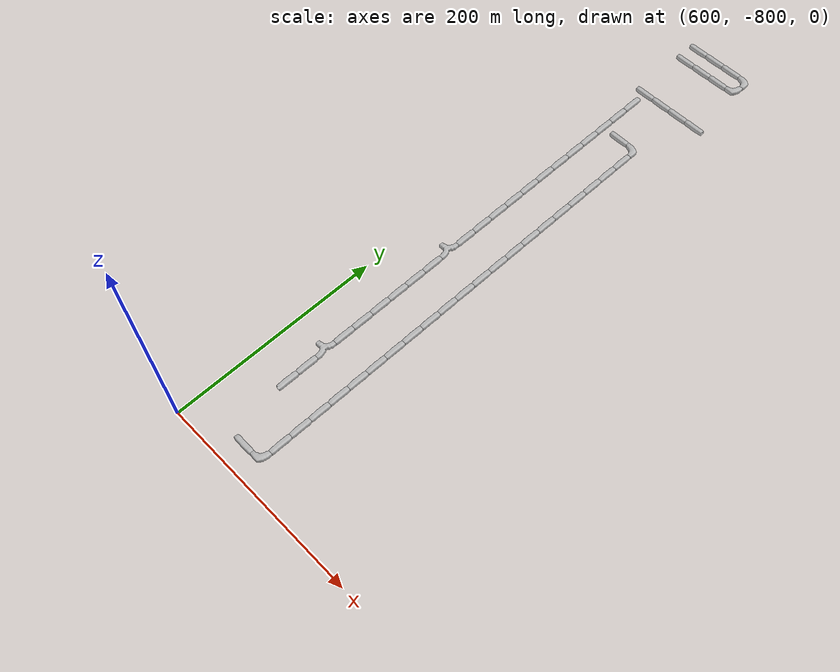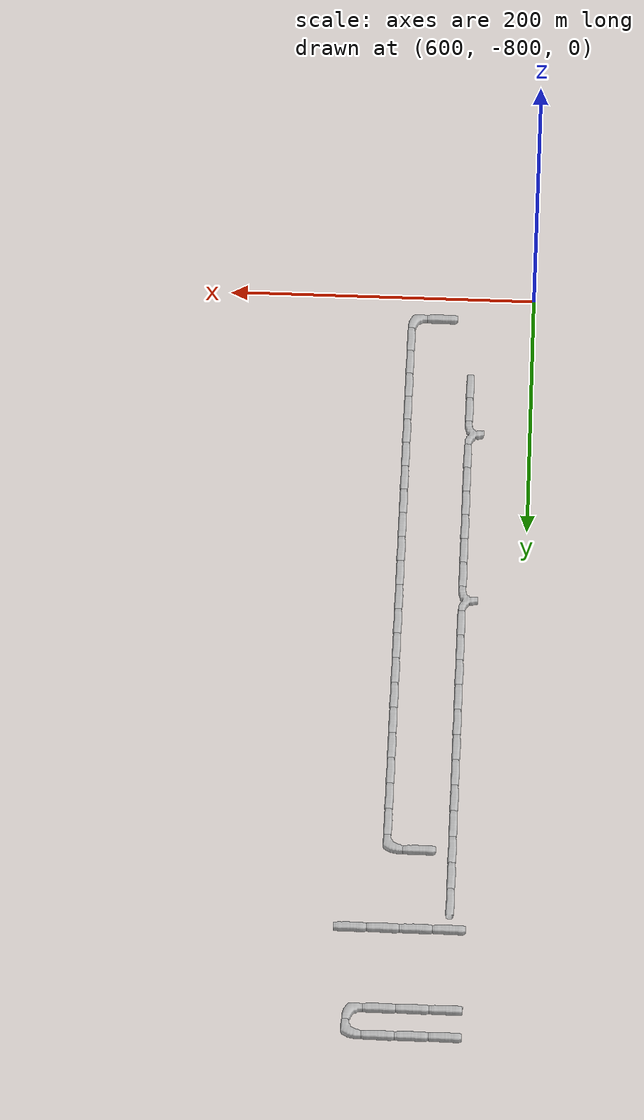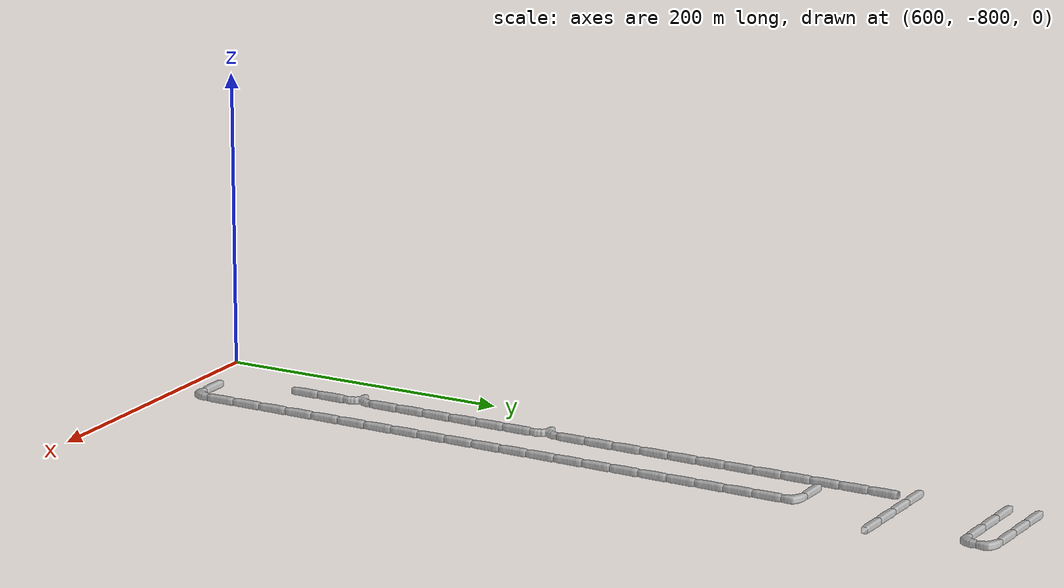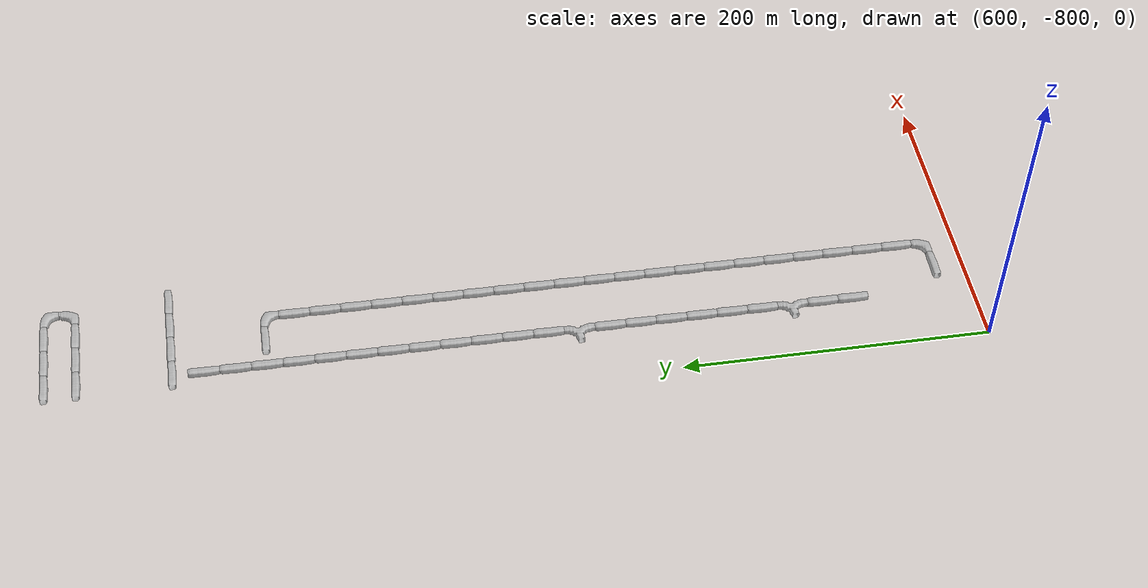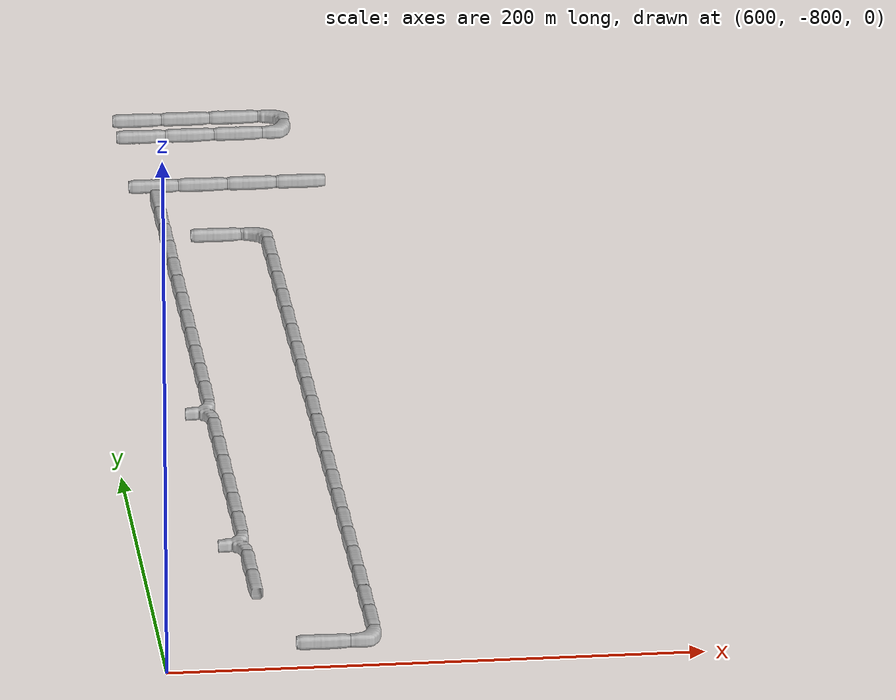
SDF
<sdf version="1.6">
 <world name="cave_32000_64">
  <include>
   <static>true</static>
   <name>cave_32_-10</name>
   <pose>640 -200 0 0 0 1.5707963267948966</pose>
   <uri>model://cave_straight_20m</uri>
  </include>
  <include>
   <static>true</static>
   <name>cave_33_-10</name>
   <pose>660 -200 0 0 0 1.5707963267948966</pose>
   <uri>model://cave_straight_20m</uri>
  </include>
  <include>
   <static>true</static>
   <name>cave_34_-10</name>
   <pose>680 -200 0 0 0 1.5707963267948966</pose>
   <uri>model://cave_straight_20m</uri>
  </include>
  <include>
   <static>true</static>
   <name>cave_35_-10</name>
   <pose>700 -200 0 0 0 3.141592653589793</pose>
   <uri>model://cave_L_20m</uri>
  </include>
  <include>
   <static>true</static>
   <name>cave_35_-11</name>
   <pose>700 -220 0 0 0 1.5707963267948966</pose>
   <uri>model://cave_L_20m</uri>
  </include>
  <include>
   <static>true</static>
   <name>cave_34_-11</name>
   <pose>680 -220 0 0 0 1.5707963267948966</pose>
   <uri>model://cave_straight_20m</uri>
  </include>
  <include>
   <static>true</static>
   <name>cave_33_-11</name>
   <pose>660 -220 0 0 0 1.5707963267948966</pose>
   <uri>model://cave_straight_20m</uri>
  </include>
  <include>
   <static>true</static>
   <name>cave_32_-11</name>
   <pose>640 -220 0 0 0 1.5707963267948966</pose>
   <uri>model://cave_straight_20m</uri>
  </include>
  <include>
   <static>true</static>
   <name>cave_32_-27</name>
   <pose>640 -540 0 0 0 1.5707963267948966</pose>
   <uri>model://cave_3way_20m</uri>
  </include>
  <include>
   <static>true</static>
   <name>cave_32_-28</name>
   <pose>640 -560 0 0 0 0.0</pose>
   <uri>model://cave_straight_20m</uri>
  </include>
  <include>
   <static>true</static>
   <name>cave_32_-29</name>
   <pose>640 -580 0 0 0 0.0</pose>
   <uri>model://cave_straight_20m</uri>
  </include>
  <include>
   <static>true</static>
   <name>cave_32_-30</name>
   <pose>640 -600 0 0 0 0.0</pose>
   <uri>model://cave_straight_20m</uri>
  </include>
  <include>
   <static>true</static>
   <name>cave_32_-31</name>
   <pose>640 -620 0 0 0 0.0</pose>
   <uri>model://cave_straight_20m</uri>
  </include>
  <include>
   <static>true</static>
   <name>cave_32_-32</name>
   <pose>640 -640 0 0 0 0.0</pose>
   <uri>model://cave_straight_20m</uri>
  </include>
  <include>
   <static>true</static>
   <name>cave_32_-33</name>
   <pose>640 -660 0 0 0 0.0</pose>
   <uri>model://cave_straight_20m</uri>
  </include>
  <include>
   <static>true</static>
   <name>cave_32_-34</name>
   <pose>640 -680 0 0 0 1.5707963267948966</pose>
   <uri>model://cave_3way_20m</uri>
  </include>
  <include>
   <static>true</static>
   <name>cave_32_-35</name>
   <pose>640 -700 0 0 0 0.0</pose>
   <uri>model://cave_straight_20m</uri>
  </include>
  <include>
   <static>true</static>
   <name>cave_32_-36</name>
   <pose>640 -720 0 0 0 0.0</pose>
   <uri>model://cave_straight_20m</uri>
  </include>
  <include>
   <static>true</static>
   <name>cave_33_-39</name>
   <pose>660 -780 0 0 0 1.5707963267948966</pose>
   <uri>model://cave_straight_20m</uri>
  </include>
  <include>
   <static>true</static>
   <name>cave_34_-39</name>
   <pose>680 -780 0 0 0 1.5707963267948966</pose>
   <uri>model://cave_L_20m</uri>
  </include>
  <include>
   <static>true</static>
   <name>cave_34_-38</name>
   <pose>680 -760 0 0 0 0.0</pose>
   <uri>model://cave_straight_20m</uri>
  </include>
  <include>
   <static>true</static>
   <name>cave_34_-37</name>
   <pose>680 -740 0 0 0 0.0</pose>
   <uri>model://cave_straight_20m</uri>
  </include>
  <include>
   <static>true</static>
   <name>cave_34_-36</name>
   <pose>680 -720 0 0 0 0.0</pose>
   <uri>model://cave_straight_20m</uri>
  </include>
  <include>
   <static>true</static>
   <name>cave_34_-35</name>
   <pose>680 -700 0 0 0 0.0</pose>
   <uri>model://cave_straight_20m</uri>
  </include>
  <include>
   <static>true</static>
   <name>cave_34_-34</name>
   <pose>680 -680 0 0 0 0.0</pose>
   <uri>model://cave_straight_20m</uri>
  </include>
  <include>
   <static>true</static>
   <name>cave_34_-33</name>
   <pose>680 -660 0 0 0 0.0</pose>
   <uri>model://cave_straight_20m</uri>
  </include>
  <include>
   <static>true</static>
   <name>cave_34_-32</name>
   <pose>680 -640 0 0 0 0.0</pose>
   <uri>model://cave_straight_20m</uri>
  </include>
  <include>
   <static>true</static>
   <name>cave_34_-31</name>
   <pose>680 -620 0 0 0 0.0</pose>
   <uri>model://cave_straight_20m</uri>
  </include>
  <include>
   <static>true</static>
   <name>cave_34_-30</name>
   <pose>680 -600 0 0 0 0.0</pose>
   <uri>model://cave_straight_20m</uri>
  </include>
  <include>
   <static>true</static>
   <name>cave_34_-29</name>
   <pose>680 -580 0 0 0 0.0</pose>
   <uri>model://cave_straight_20m</uri>
  </include>
  <include>
   <static>true</static>
   <name>cave_34_-28</name>
   <pose>680 -560 0 0 0 0.0</pose>
   <uri>model://cave_straight_20m</uri>
  </include>
  <include>
   <static>true</static>
   <name>cave_34_-27</name>
   <pose>680 -540 0 0 0 0.0</pose>
   <uri>model://cave_straight_20m</uri>
  </include>
  <include>
   <static>true</static>
   <name>cave_34_-26</name>
   <pose>680 -520 0 0 0 0.0</pose>
   <uri>model://cave_straight_20m</uri>
  </include>
  <include>
   <static>true</static>
   <name>cave_34_-25</name>
   <pose>680 -500 0 0 0 0.0</pose>
   <uri>model://cave_straight_20m</uri>
  </include>
  <include>
   <static>true</static>
   <name>cave_34_-24</name>
   <pose>680 -480 0 0 0 0.0</pose>
   <uri>model://cave_straight_20m</uri>
  </include>
  <include>
   <static>true</static>
   <name>cave_34_-23</name>
   <pose>680 -460 0 0 0 0.0</pose>
   <uri>model://cave_straight_20m</uri>
  </include>
  <include>
   <static>true</static>
   <name>cave_34_-22</name>
   <pose>680 -440 0 0 0 0.0</pose>
   <uri>model://cave_straight_20m</uri>
  </include>
  <include>
   <static>true</static>
   <name>cave_34_-21</name>
   <pose>680 -420 0 0 0 0.0</pose>
   <uri>model://cave_straight_20m</uri>
  </include>
  <include>
   <static>true</static>
   <name>cave_34_-20</name>
   <pose>680 -400 0 0 0 0.0</pose>
   <uri>model://cave_straight_20m</uri>
  </include>
  <include>
   <static>true</static>
   <name>cave_34_-19</name>
   <pose>680 -380 0 0 0 0.0</pose>
   <uri>model://cave_straight_20m</uri>
  </include>
  <include>
   <static>true</static>
   <name>cave_34_-18</name>
   <pose>680 -360 0 0 0 0.0</pose>
   <uri>model://cave_straight_20m</uri>
  </include>
  <include>
   <static>true</static>
   <name>cave_34_-17</name>
   <pose>680 -340 0 0 0 3.141592653589793</pose>
   <uri>model://cave_L_20m</uri>
  </include>
  <include>
   <static>true</static>
   <name>cave_33_-17</name>
   <pose>660 -340 0 0 0 1.5707963267948966</pose>
   <uri>model://cave_straight_20m</uri>
  </include>
  <include>
   <static>true</static>
   <name>cave_32_-26</name>
   <pose>640 -520 0 0 0 0.0</pose>
   <uri>model://cave_straight_20m</uri>
  </include>
  <include>
   <static>true</static>
   <name>cave_32_-25</name>
   <pose>640 -500 0 0 0 0.0</pose>
   <uri>model://cave_straight_20m</uri>
  </include>
  <include>
   <static>true</static>
   <name>cave_32_-24</name>
   <pose>640 -480 0 0 0 0.0</pose>
   <uri>model://cave_straight_20m</uri>
  </include>
  <include>
   <static>true</static>
   <name>cave_32_-23</name>
   <pose>640 -460 0 0 0 0.0</pose>
   <uri>model://cave_straight_20m</uri>
  </include>
  <include>
   <static>true</static>
   <name>cave_32_-22</name>
   <pose>640 -440 0 0 0 0.0</pose>
   <uri>model://cave_straight_20m</uri>
  </include>
  <include>
   <static>true</static>
   <name>cave_32_-21</name>
   <pose>640 -420 0 0 0 0.0</pose>
   <uri>model://cave_straight_20m</uri>
  </include>
  <include>
   <static>true</static>
   <name>cave_32_-20</name>
   <pose>640 -400 0 0 0 0.0</pose>
   <uri>model://cave_straight_20m</uri>
  </include>
  <include>
   <static>true</static>
   <name>cave_32_-19</name>
   <pose>640 -380 0 0 0 0.0</pose>
   <uri>model://cave_straight_20m</uri>
  </include>
  <include>
   <static>true</static>
   <name>cave_32_-18</name>
   <pose>640 -360 0 0 0 0.0</pose>
   <uri>model://cave_straight_20m</uri>
  </include>
  <include>
   <static>true</static>
   <name>cave_32_-17</name>
   <pose>640 -340 0 0 0 0.0</pose>
   <uri>model://cave_straight_20m</uri>
  </include>
  <include>
   <static>true</static>
   <name>cave_32_-16</name>
   <pose>640 -320 0 0 0 0.0</pose>
   <uri>model://cave_straight_20m</uri>
  </include>
  <include>
   <static>true</static>
   <name>cave_32_-15</name>
   <pose>640 -300 0 0 0 0.0</pose>
   <uri>model://cave_straight_20m</uri>
  </include>
  <include>
   <static>true</static>
   <name>cave_32_-14</name>
   <pose>640 -280 0 0 0 1.5707963267948966</pose>
   <uri>model://cave_straight_20m</uri>
  </include>
  <include>
   <static>true</static>
   <name>cave_33_-14</name>
   <pose>660 -280 0 0 0 1.5707963267948966</pose>
   <uri>model://cave_straight_20m</uri>
  </include>
  <include>
   <static>true</static>
   <name>cave_34_-14</name>
   <pose>680 -280 0 0 0 1.5707963267948966</pose>
   <uri>model://cave_straight_20m</uri>
  </include>
  <include>
   <static>true</static>
   <name>cave_35_-14</name>
   <pose>700 -280 0 0 0 1.5707963267948966</pose>
   <uri>model://cave_straight_20m</uri>
  </include>
 </world>
</sdf>
